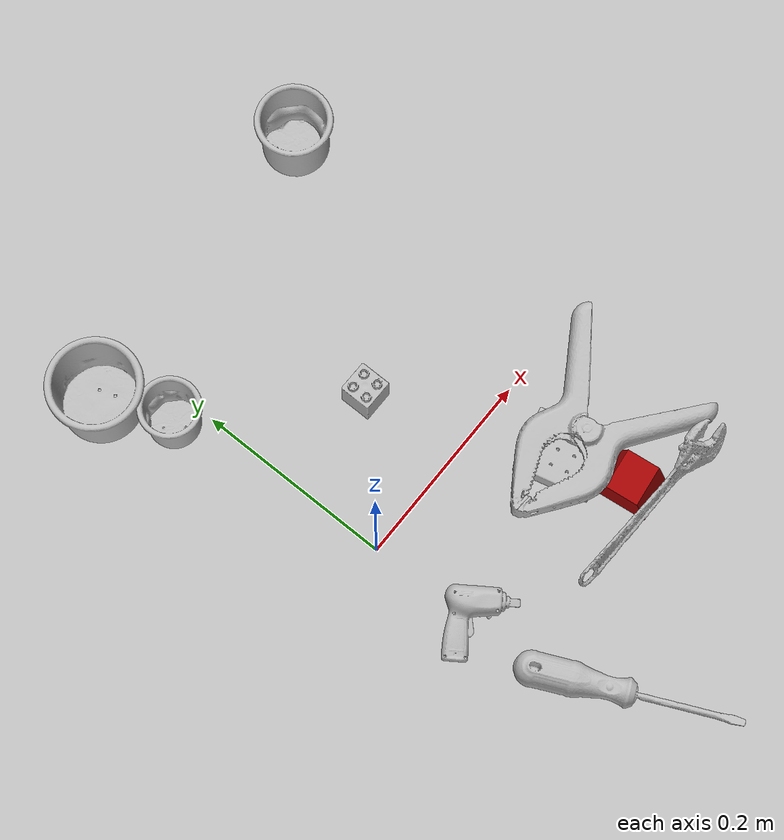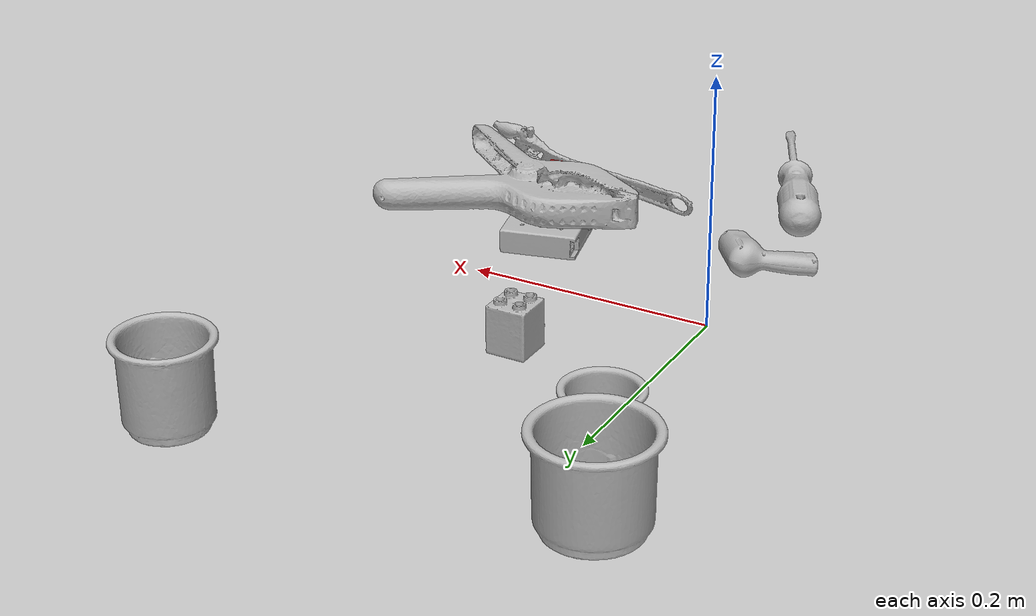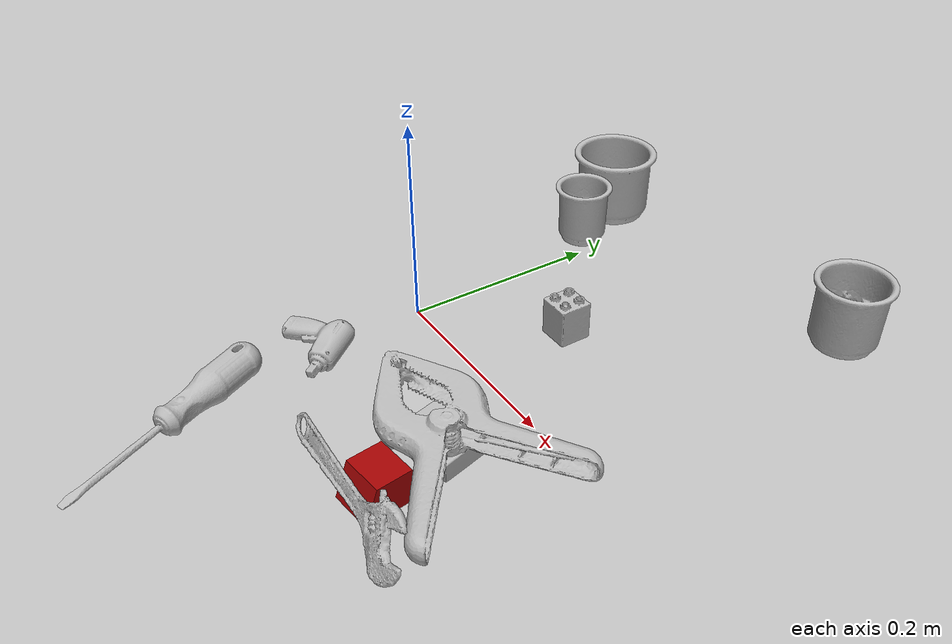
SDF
<sdf version="1.4">
  <world name="default">
    <light name="light1" type="point">
      <pose>0 0 1 0 0 0</pose>
      <diffuse>3 3 3 1</diffuse>
      <specular>3 3 3 1</specular>
    </light>
    <light name="light2" type="point">
      <pose>0 0.5 2 0 0 0</pose>
      <diffuse>1 1 1 1</diffuse>
      <specular>1 1 1 1</specular>
    </light>
    <light name="light3" type="point">
      <pose>0 0.5 2 0 0 0</pose>
      <diffuse>3 3 3 1</diffuse>
      <specular>3 3 3 1</specular>
    </light>
    <scene>
      <ambient>0.7 0.7 0.7</ambient>
    </scene>
    <model name="cup1">
      <link name="link_cup1">
        <collision name="default">
          <geometry>
            <mesh>
              <uri>model://b_cups/collision_meshes/collision.obj</uri>
              <scale>1.0 1.0 1.0</scale>
            </mesh>
          </geometry>
          <surface>
            <friction>
              <ode>
                <mu>0.5</mu>
                <mu2>0.5</mu2>
              </ode>
            </friction>
          <contact>
        <ode>
            <max_vel>0</max_vel>
            <min_depth>0.0001</min_depth>
            <kp>1e8</kp>
        </ode>
    </contact></surface>
        </collision>
        <visual name="default">
          <geometry>
            <mesh>
              <uri>model://b_cups/visual_meshes/visual.dae</uri>
              <scale>1.0 1.0 1.0</scale>
            </mesh>
          </geometry>
        </visual>
        <inertial>
          <mass>0.03190340846776962</mass>
          <pose>0.0005182004533708096 0.0018058607820421457 -0.0013381806202232838 0.11356328214070865 0.03872483993123738 -0.34569243052877063</pose>
          <inertia>
            <ixx>2.0883017e-05</ixx>
            <iyy>2.0486541e-05</iyy>
            <izz>1.7572664e-05</izz>
            <ixy>0</ixy>
            <ixz>0</ixz>
            <iyz>0</iyz>
          </inertia>
        </inertial>
      </link>
      <pose>-0.025711461901664734 0.22282634675502777 0.032136332243680954 -0.0009025592638987066 -0.00046410171123118757 -0.04777425658229421</pose>
    </model>
    <model name="cup2">
      <link name="link_cup2">
        <collision name="default">
          <geometry>
            <mesh>
              <uri>model://e_cups/collision_meshes/collision.obj</uri>
              <scale>1.0 1.0 1.0</scale>
            </mesh>
          </geometry>
          <surface>
            <friction>
              <ode>
                <mu>0.5</mu>
                <mu2>0.5</mu2>
              </ode>
            </friction>
          <contact>
        <ode>
            <max_vel>0</max_vel>
            <min_depth>0.0001</min_depth>
            <kp>1e8</kp>
        </ode>
    </contact></surface>
        </collision>
        <visual name="default">
          <geometry>
            <mesh>
              <uri>model://e_cups/visual_meshes/visual.dae</uri>
              <scale>1.0 1.0 1.0</scale>
            </mesh>
          </geometry>
        </visual>
        <inertial>
          <mass>0.09350046515464783</mass>
          <pose>0.0011355748865753412 0.0028797851409763098 -0.0038829720579087734 0.69524087765449 0.08767898447354379 -0.5235249697507389</pose>
          <inertia>
            <ixx>8.2444014e-05</ixx>
            <iyy>8.6165805e-05</iyy>
            <izz>7.882601e-05</izz>
            <ixy>0</ixy>
            <ixz>0</ixz>
            <iyz>0</iyz>
          </inertia>
        </inertial>
      </link>
      <pose>0.26198136806488037 0.31364643573760986 0.0355999693274498 3.112509382676969e-06 -1.6909139977946135e-06 -0.7751159380928396</pose>
    </model>
    <model name="cup3">
      <link name="link_cup3">
        <collision name="default">
          <geometry>
            <mesh>
              <uri>model://h_cups/collision_meshes/collision.obj</uri>
              <scale>1.0 1.0 1.0</scale>
            </mesh>
          </geometry>
          <surface>
            <friction>
              <ode>
                <mu>0.5</mu>
                <mu2>0.5</mu2>
              </ode>
            </friction>
          <contact>
        <ode>
            <max_vel>0</max_vel>
            <min_depth>0.0001</min_depth>
            <kp>1e8</kp>
        </ode>
    </contact></surface>
        </collision>
        <visual name="default">
          <geometry>
            <mesh>
              <uri>model://h_cups/visual_meshes/visual.dae</uri>
              <scale>1.0 1.0 1.0</scale>
            </mesh>
          </geometry>
        </visual>
        <inertial>
          <mass>0.05626832693815231</mass>
          <pose>-2.7024709197576158e-05 0.00023018589126877487 -0.0018405396258458495 -0.02436208446622447 0.06545190020339471 0.12885609358770897</pose>
          <inertia>
            <ixx>7.2667885e-05</ixx>
            <iyy>7.180077e-05</iyy>
            <izz>7.620872e-05</izz>
            <ixy>0</ixy>
            <ixz>0</ixz>
            <iyz>0</iyz>
          </inertia>
        </inertial>
      </link>
      <pose>-0.05396147444844246 0.28822481632232666 0.03775801882147789 -4.017683797874698e-07 -2.3098660814513813e-07 -2.911007543587981</pose>
    </model>
    <model name="toy1">
      <link name="link_toy1">
        <collision name="default">
          <geometry>
            <mesh>
              <uri>model://nine_hole_peg_test/collision_meshes/collision.obj</uri>
              <scale>0.5 0.5 0.5</scale>
            </mesh>
          </geometry>
          <surface>
            <friction>
              <ode>
                <mu>0.5</mu>
                <mu2>0.5</mu2>
              </ode>
            </friction>
          <contact>
        <ode>
            <max_vel>0</max_vel>
            <min_depth>0.0001</min_depth>
            <kp>1e8</kp>
        </ode>
    </contact></surface>
        </collision>
        <visual name="default">
          <geometry>
            <mesh>
              <uri>model://nine_hole_peg_test/visual_meshes/visual.dae</uri>
              <scale>0.5 0.5 0.5</scale>
            </mesh>
          </geometry>
        </visual>
        <inertial>
          <mass>0.06318242102861404</mass>
          <pose>-0.0023086941801011562 -0.004823808092623949 1.3230346667114645e-05 -0.0014666789322941463 0.0007194184826049595 -0.6342412444031488</pose>
          <inertia>
            <ixx>2.4699024e-05</ixx>
            <iyy>2.3061213e-05</iyy>
            <izz>4.327997e-05</izz>
            <ixy>0</ixy>
            <ixz>0</ixz>
            <iyz>0</iyz>
          </inertia>
        </inertial>
      </link>
      <pose>0.17612256109714508 -0.07916741073131561 0.010387194342911243 -8.485899315625132e-06 1.731547427188275e-05 -2.894559894573634</pose>
    </model>
    <model name="toy2">
      <link name="link_toy2">
        <collision name="default">
          <geometry>
            <mesh>
              <uri>model://prism/collision_meshes/collision.obj</uri>
              <scale>0.5 0.5 0.5</scale>
            </mesh>
          </geometry>
          <surface>
            <friction>
              <ode>
                <mu>0.5</mu>
                <mu2>0.5</mu2>
              </ode>
            </friction>
          <contact>
        <ode>
            <max_vel>0</max_vel>
            <min_depth>0.0001</min_depth>
            <kp>1e8</kp>
        </ode>
    </contact></surface>
        </collision>
        <visual name="default">
          <geometry>
            <mesh>
              <uri>model://prism/visual_meshes/visual.dae</uri>
              <scale>0.5 0.5 0.5</scale>
            </mesh>
          </geometry>
        </visual>
        <inertial>
          <mass>0.058882199227809906</mass>
          <pose>-4.92679828312248e-05 -2.480786349678965e-07 -0.0016934550367295742 0.0 0.00655918030046738 0.0</pose>
          <inertia>
            <ixx>1.32851155e-05</ixx>
            <iyy>1.6055232e-05</iyy>
            <izz>1.9665738e-05</izz>
            <ixy>0</ixy>
            <ixz>0</ixz>
            <iyz>0</iyz>
          </inertia>
        </inertial>
      </link>
      <pose>0.19702795147895813 -0.14435331523418427 0.01608504168689251 3.2895616392066406e-06 -4.7319908209763565e-05 -1.4474902327617452</pose>
    </model>
    <model name="toy3">
      <link name="link_toy3">
        <collision name="default">
          <geometry>
            <mesh>
              <uri>model://b_toy_airplane/collision_meshes/collision.obj</uri>
              <scale>0.5 0.5 0.5</scale>
            </mesh>
          </geometry>
          <surface>
            <friction>
              <ode>
                <mu>0.5</mu>
                <mu2>0.5</mu2>
              </ode>
            </friction>
          <contact>
        <ode>
            <max_vel>0</max_vel>
            <min_depth>0.0001</min_depth>
            <kp>1e8</kp>
        </ode>
    </contact></surface>
        </collision>
        <visual name="default">
          <geometry>
            <mesh>
              <uri>model://b_toy_airplane/visual_meshes/visual.dae</uri>
              <scale>0.5 0.5 0.5</scale>
            </mesh>
          </geometry>
        </visual>
        <inertial>
          <mass>0.06070837751030922</mass>
          <pose>0.002540682442486286 0.0020077924709767103 0.0047715334221720695 -0.040018114249042835 -0.04022179473329346 -0.5601502235260123</pose>
          <inertia>
            <ixx>2.8176557e-05</ixx>
            <iyy>1.1262445e-05</iyy>
            <izz>3.5054447e-05</izz>
            <ixy>0</ixy>
            <ixz>0</ixz>
            <iyz>0</iyz>
          </inertia>
        </inertial>
      </link>
      <pose>0.004112189635634422 -0.1032233014702797 0.008488938212394714 0.18487645393169858 0.11349904353058189 -0.9459359894140507</pose>
    </model>
    <model name="toy4">
      <link name="link_toy4">
        <collision name="default">
          <geometry>
            <mesh>
              <uri>model://f_lego_duplo/collision_meshes/collision.obj</uri>
              <scale>1.0 1.0 1.0</scale>
            </mesh>
          </geometry>
          <surface>
            <friction>
              <ode>
                <mu>0.5</mu>
                <mu2>0.5</mu2>
              </ode>
            </friction>
          <contact>
        <ode>
            <max_vel>0</max_vel>
            <min_depth>0.0001</min_depth>
            <kp>1e8</kp>
        </ode>
    </contact></surface>
        </collision>
        <visual name="default">
          <geometry>
            <mesh>
              <uri>model://f_lego_duplo/visual_meshes/visual.dae</uri>
              <scale>1.0 1.0 1.0</scale>
            </mesh>
          </geometry>
        </visual>
        <inertial>
          <mass>0.029542475938796997</mass>
          <pose>2.369392677792348e-05 0.00013393184053711593 0.0018837879179045558 0.029838766168002753 -0.014424835911361083 -0.6756712748416152</pose>
          <inertia>
            <ixx>6.2424897e-06</ixx>
            <iyy>6.2981026e-06</iyy>
            <izz>5.4187462e-06</izz>
            <ixy>0</ixy>
            <ixz>0</ixz>
            <iyz>0</iyz>
          </inertia>
        </inertial>
      </link>
      <pose>0.1085176095366478 0.10146056115627289 0.021871007978916168 1.7703870223315244e-06 1.4378390189939628e-06 1.5720173366853765</pose>
    </model>
    <model name="hardware1">
      <link name="link_hardware1">
        <collision name="default">
          <geometry>
            <mesh>
              <uri>model://extra_large_clamp/collision_meshes/collision.obj</uri>
              <scale>1.0 1.0 1.0</scale>
            </mesh>
          </geometry>
          <surface>
            <friction>
              <ode>
                <mu>0.5</mu>
                <mu2>0.5</mu2>
              </ode>
            </friction>
          <contact>
        <ode>
            <max_vel>0</max_vel>
            <min_depth>0.0001</min_depth>
            <kp>1e8</kp>
        </ode>
    </contact></surface>
        </collision>
        <visual name="default">
          <geometry>
            <mesh>
              <uri>model://extra_large_clamp/visual_meshes/visual.dae</uri>
              <scale>1.0 1.0 1.0</scale>
            </mesh>
          </geometry>
        </visual>
        <inertial>
          <mass>0.20469266176223755</mass>
          <pose>0.00323202065192163 -7.615445792907849e-05 0.0003172155993524939 0.013786991356050505 -0.0005066836095273004 -0.000893628832478523</pose>
          <inertia>
            <ixx>0.00031109934</ixx>
            <iyy>0.0005356169</iyy>
            <izz>0.00081831246</izz>
            <ixy>0</ixy>
            <ixz>0</ixz>
            <iyz>0</iyz>
          </inertia>
        </inertial>
      </link>
      <pose>0.2011287361383438 -0.08549175411462784 0.038922060281038284 -0.024828784516317783 -0.008711580687370489 3.110344776738185</pose>
    </model>
    <model name="hardware2">
      <link name="link_hardware2">
        <collision name="default">
          <geometry>
            <mesh>
              <uri>model://flat_screwdriver/collision_meshes/collision.obj</uri>
              <scale>1.0 1.0 1.0</scale>
            </mesh>
          </geometry>
          <surface>
            <friction>
              <ode>
                <mu>0.5</mu>
                <mu2>0.5</mu2>
              </ode>
            </friction>
          <contact>
        <ode>
            <max_vel>0</max_vel>
            <min_depth>0.0001</min_depth>
            <kp>1e8</kp>
        </ode>
    </contact></surface>
        </collision>
        <visual name="default">
          <geometry>
            <mesh>
              <uri>model://flat_screwdriver/visual_meshes/visual.dae</uri>
              <scale>1.0 1.0 1.0</scale>
            </mesh>
          </geometry>
        </visual>
        <inertial>
          <mass>0.09510745853185654</mass>
          <pose>-0.048918697983026505 -0.0006576799787580967 -0.000614091579336673 -0.5614762322958965 -0.003233723970645699 0.006982278511552064</pose>
          <inertia>
            <ixx>1.1236876e-05</ixx>
            <iyy>0.00014265477</iyy>
            <izz>0.00014258873</izz>
            <ixy>0</ixy>
            <ixz>0</ixz>
            <iyz>0</iyz>
          </inertia>
        </inertial>
      </link>
      <pose>0.03920746594667435 -0.2614460587501526 0.015338663943111897 -0.21441169918530412 0.04069435567270506 -1.141178371757032</pose>
    </model>
    <model name="hardware3">
      <link name="link_hardware3">
        <collision name="default">
          <geometry>
            <mesh>
              <uri>model://adjustable_wrench/collision_meshes/collision.obj</uri>
              <scale>1.0 1.0 1.0</scale>
            </mesh>
          </geometry>
          <surface>
            <friction>
              <ode>
                <mu>0.5</mu>
                <mu2>0.5</mu2>
              </ode>
            </friction>
          <contact>
        <ode>
            <max_vel>0</max_vel>
            <min_depth>0.0001</min_depth>
            <kp>1e8</kp>
        </ode>
    </contact></surface>
        </collision>
        <visual name="default">
          <geometry>
            <mesh>
              <uri>model://adjustable_wrench/visual_meshes/visual.dae</uri>
              <scale>1.0 1.0 1.0</scale>
            </mesh>
          </geometry>
        </visual>
        <inertial>
          <mass>0.02741360291838646</mass>
          <pose>0.03740980476140976 -0.002896887017413974 -0.0011149230413138866 -0.0144733350781748 0.006656025939833136 -0.010954202845362587</pose>
          <inertia>
            <ixx>5.610589e-06</ixx>
            <iyy>6.5665416e-05</iyy>
            <izz>7.0977985e-05</izz>
            <ixy>0</ixy>
            <ixz>0</ixz>
            <iyz>0</iyz>
          </inertia>
        </inertial>
      </link>
      <pose>0.19573238492012024 -0.17198242247104645 0.023961279541254044 1.1567168768136247 -0.09126776898974401 -0.05716701422545313</pose>
    </model>
  <physics type="ode">
      <max_contacts>50</max_contacts>
      <ode>
        <solver>
          <type>quick</type>
          <iters>75</iters>
        </solver>
        <constraints>
          <contact_max_correcting_vel>0</contact_max_correcting_vel>
          <contact_surface_layer>0</contact_surface_layer>
        </constraints>
      </ode>
    </physics></world>
</sdf>
